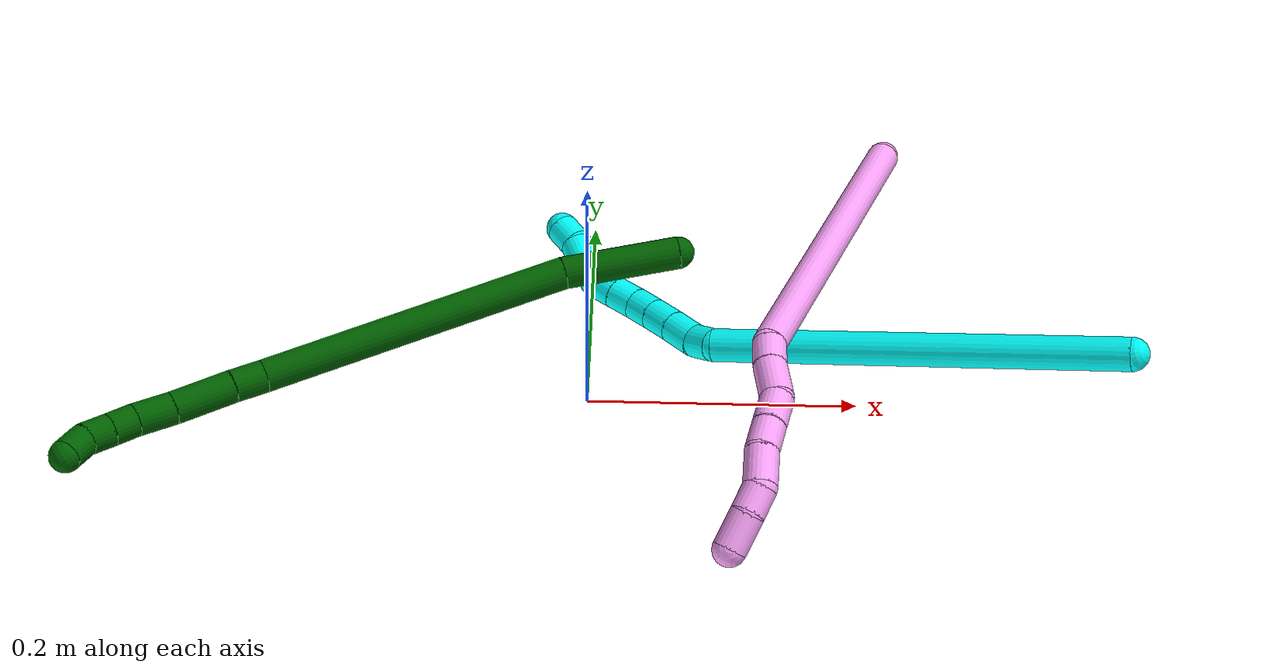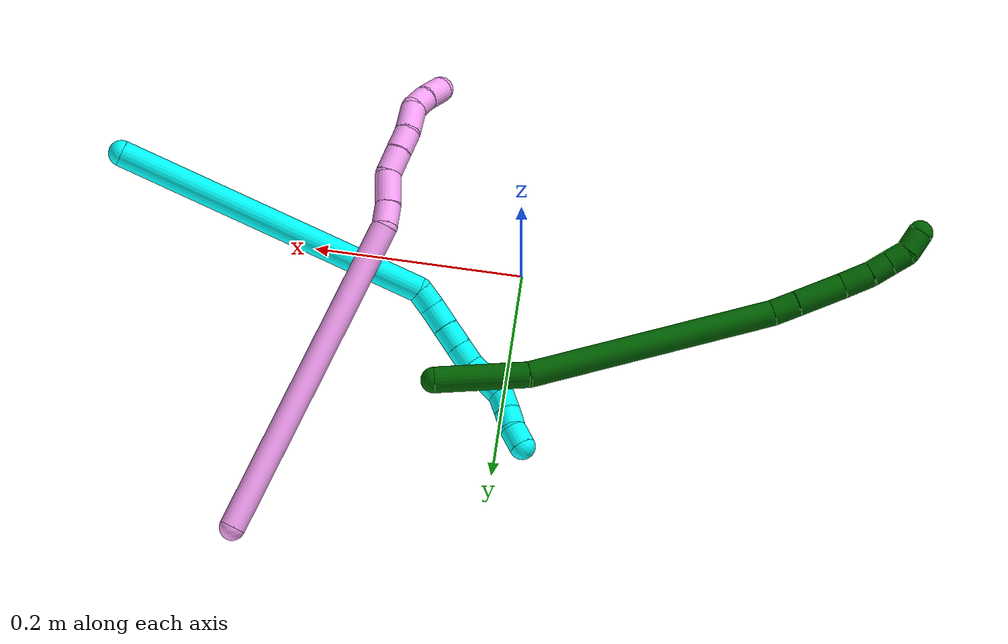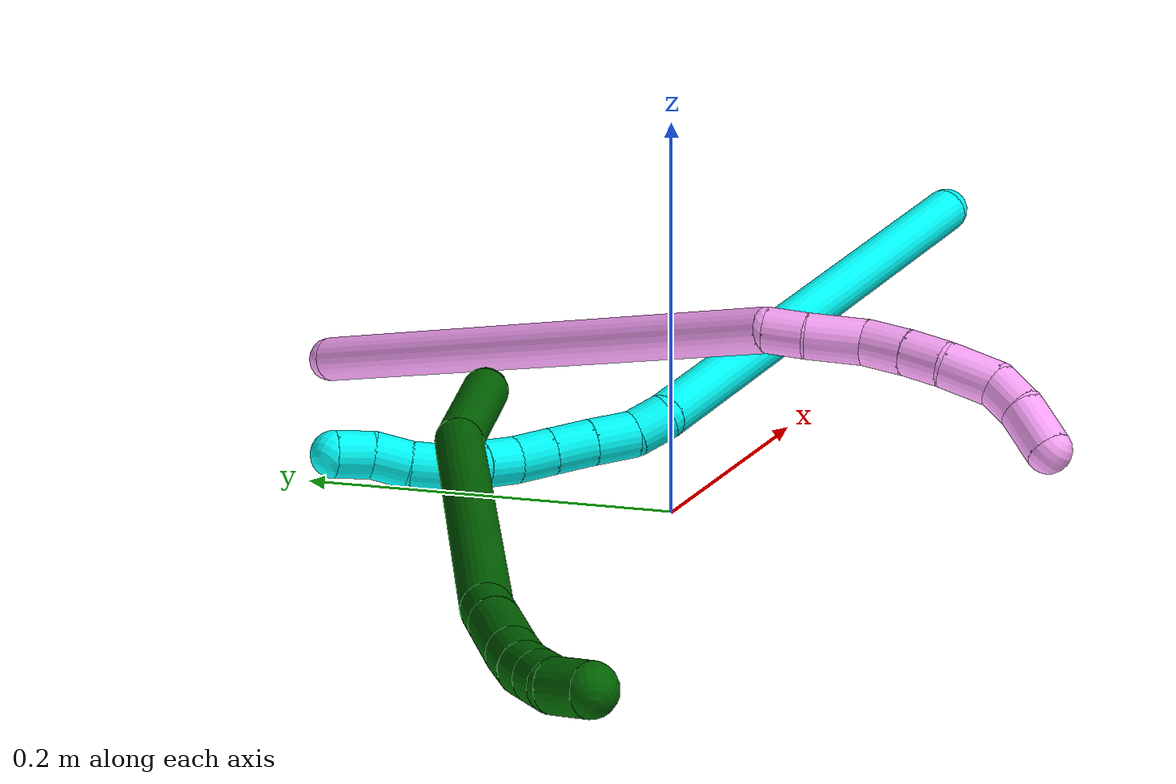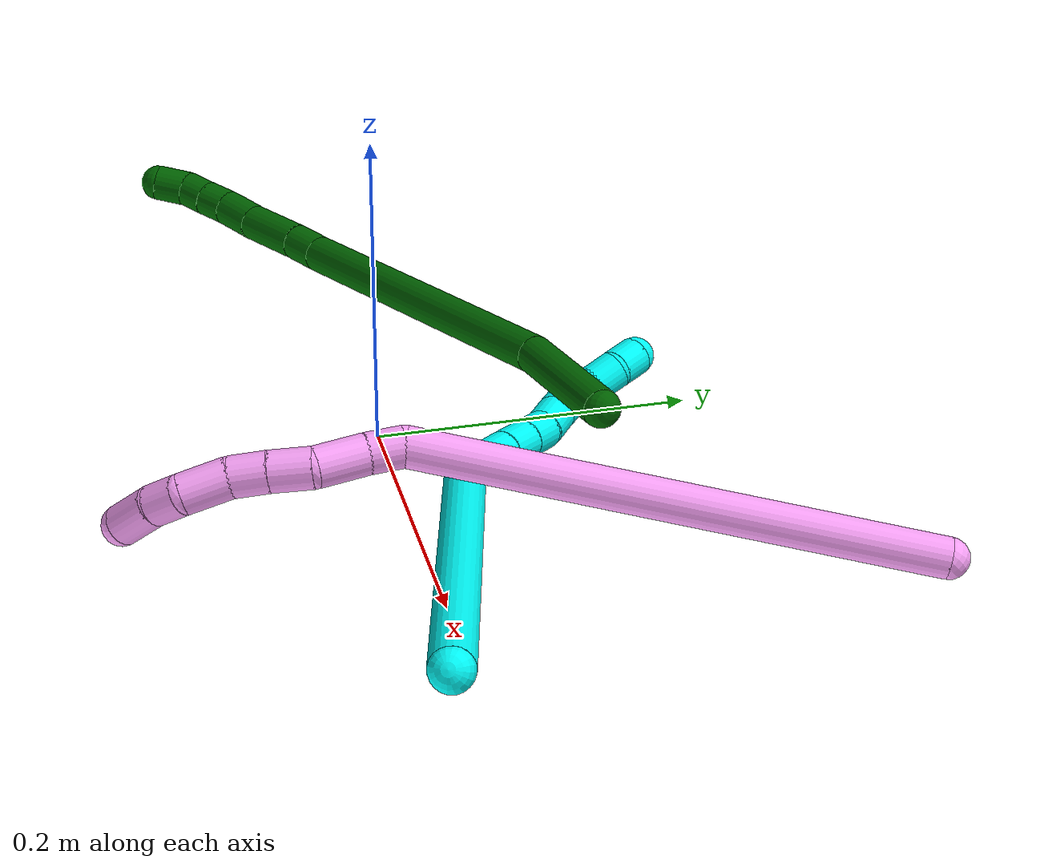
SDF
<sdf version="1.7">
 <world name="default">
  <model name="photoneo_s_sensor">
   <static>1</static>
   <pose>0 0 2 1.57079 1.57079 3.14159</pose>
   <link name="link">
    <inertial><mass>0.1</mass></inertial>
    <sensor name="sensor" type="depth">
     <update_rate>30</update_rate>
     <camera>
      <horizontal_fov>1.22</horizontal_fov>
      <image><width>1920</width><height>1200</height><format>B8G8R8</format></image>
      <clip><near>0.1</near><far>4</far></clip>
      <depth_camera><output>points</output></depth_camera>
     </camera>
     <plugin name="camera_plugin" filename="libgazebo_ros_depth_camera.so">
      <baseline>0.2</baseline>
      <alwaysOn>1</alwaysOn>
      <updateRate>0.0</updateRate>
      <cameraName>camera_ir</cameraName>
      <imageTopicName>/camera/color/image_raw</imageTopicName>
      <cameraInfoTopicName>/camera/color/camera_info</cameraInfoTopicName>
      <depthImageTopicName>/camera/depth/image_raw</depthImageTopicName>
      <depthImageCameraInfoTopicName>/camera/depth/camera_info</depthImageCameraInfoTopicName>
      <pointCloudTopicName>/camera/depth/points</pointCloudTopicName>
      <frameName>fr_optical</frameName>
      <pointCloudCutoff>0.1</pointCloudCutoff>
      <pointCloudCutoffMax>2.0</pointCloudCutoffMax>
      <distortionK1>0</distortionK1>
      <distortionK2>0</distortionK2>
      <distortionK3>0</distortionK3>
      <distortionT1>0</distortionT1>
      <distortionT2>0</distortionT2>
      <CxPrime>0</CxPrime>
      <Cx>0</Cx>
      <Cy>0</Cy>
      <focalLength>0</focalLength>
      <hackBaseline>0</hackBaseline>
     </plugin>
    </sensor>
   </link>
  </model>
  <model name="bin">
   <static>1</static>
   <link name="bottom">
    <collision name="collision-bottom">
     <pose>0 0 -0.01 0 -0 0</pose>
     <geometry><box><size>0.8 0.6 0.02</size></box></geometry>
     <surface>
      <friction><ode><mu>100</mu><mu2>100</mu2></ode></friction>
      <contact><collide_bitmask>65535</collide_bitmask></contact>
     </surface>
    </collision>
   </link>
   <link name="west_wall">
    <collision name="collision-west_wall">
     <pose>-0.41 0 0.1 0 -0 0</pose>
     <geometry><box><size>0.02 0.6 0.2</size></box></geometry>
     <surface>
      <friction><ode><mu>100</mu><mu2>100</mu2></ode></friction>
      <contact><collide_bitmask>65535</collide_bitmask></contact>
     </surface>
    </collision>
   </link>
   <link name="east_wall">
    <collision name="collision-east_wall">
     <pose>0.41 0 0.1 0 -0 0</pose>
     <geometry><box><size>0.02 0.6 0.2</size></box></geometry>
     <surface>
      <friction><ode><mu>100</mu><mu2>100</mu2></ode></friction>
      <contact><collide_bitmask>65535</collide_bitmask></contact>
     </surface>
    </collision>
   </link>
   <link name="south_wall">
    <collision name="collision-south_wall">
     <pose>0 -0.31 0.1 0 -0 0</pose>
     <geometry><box><size>0.8 0.02 0.2</size></box></geometry>
     <surface>
      <friction><ode><mu>100</mu><mu2>100</mu2></ode></friction>
      <contact><collide_bitmask>65535</collide_bitmask></contact>
     </surface>
    </collision>
   </link>
   <link name="north_wall">
    <collision name="collision-north_wall">
     <pose>0 0.31 0.1 0 -0 0</pose>
     <geometry><box><size>0.8 0.02 0.2</size></box></geometry>
     <surface>
      <friction><ode><mu>100</mu><mu2>100</mu2></ode></friction>
      <contact><collide_bitmask>65535</collide_bitmask></contact>
     </surface>
    </collision>
   </link>
  </model>
  <model name="3">
   <static>0</static>
   <link name="3">
    <collision name="collision-cylinder-e_1_1_4">
     <pose>-0.054862 -0.023895 -0.143656 2.97677 -0.360277 -2.28997</pose>
     <geometry><cylinder><radius>0.0125</radius><length>0.311242</length></cylinder></geometry>
     <surface>
      <friction><ode><mu>1.16</mu><mu2>1.16</mu2><slip1>0</slip1><slip2>0</slip2></ode></friction>
      <contact><ode><kp>1e+06</kp><kd>1</kd><max_vel>0</max_vel><min_depth>0.001</min_depth></ode></contact>
     </surface>
    </collision>
    <visual name="visual-cylinder-e_1_1_4">
     <pose>-0.054862 -0.023895 -0.143656 2.97677 -0.360277 -2.28997</pose>
     <geometry><cylinder><radius>0.0125</radius><length>0.311242</length></cylinder></geometry>
     <material><ambient>0.003922 1 0.996078 1</ambient></material>
    </visual>
    <collision name="collision-cylinder-e_2_4_5">
     <pose>-0.111621 -0.044523 -0.296667 -2.80565 -0.189295 1.02074</pose>
     <geometry><cylinder><radius>0.0125</radius><length>0.020176</length></cylinder></geometry>
     <surface>
      <friction><ode><mu>1.16</mu><mu2>1.16</mu2><slip1>0</slip1><slip2>0</slip2></ode></friction>
      <contact><ode><kp>1e+06</kp><kd>1</kd><max_vel>0</max_vel><min_depth>0.001</min_depth></ode></contact>
     </surface>
    </collision>
    <visual name="visual-cylinder-e_2_4_5">
     <pose>-0.111621 -0.044523 -0.296667 -2.80565 -0.189295 1.02074</pose>
     <geometry><cylinder><radius>0.0125</radius><length>0.020176</length></cylinder></geometry>
     <material><ambient>0.003922 1 0.996078 1</ambient></material>
    </visual>
    <collision name="collision-cylinder-e_3_5_6">
     <pose>-0.118773 -0.036145 -0.315694 -2.65542 -0.447612 1.48518</pose>
     <geometry><cylinder><radius>0.0125</radius><length>0.024273</length></cylinder></geometry>
     <surface>
      <friction><ode><mu>1.16</mu><mu2>1.16</mu2><slip1>0</slip1><slip2>0</slip2></ode></friction>
      <contact><ode><kp>1e+06</kp><kd>1</kd><max_vel>0</max_vel><min_depth>0.001</min_depth></ode></contact>
     </surface>
    </collision>
    <visual name="visual-cylinder-e_3_5_6">
     <pose>-0.118773 -0.036145 -0.315694 -2.65542 -0.447612 1.48518</pose>
     <geometry><cylinder><radius>0.0125</radius><length>0.024273</length></cylinder></geometry>
     <material><ambient>0.003922 1 0.996078 1</ambient></material>
    </visual>
    <collision name="collision-cylinder-e_4_6_7">
     <pose>-0.128662 -0.026292 -0.334617 -2.66801 -0.419621 1.44603</pose>
     <geometry><cylinder><radius>0.0125</radius><length>0.022761</length></cylinder></geometry>
     <surface>
      <friction><ode><mu>1.16</mu><mu2>1.16</mu2><slip1>0</slip1><slip2>0</slip2></ode></friction>
      <contact><ode><kp>1e+06</kp><kd>1</kd><max_vel>0</max_vel><min_depth>0.001</min_depth></ode></contact>
     </surface>
    </collision>
    <visual name="visual-cylinder-e_4_6_7">
     <pose>-0.128662 -0.026292 -0.334617 -2.66801 -0.419621 1.44603</pose>
     <geometry><cylinder><radius>0.0125</radius><length>0.022761</length></cylinder></geometry>
     <material><ambient>0.003922 1 0.996078 1</ambient></material>
    </visual>
    <collision name="collision-cylinder-e_5_7_8">
     <pose>-0.137583 -0.017312 -0.352456 -2.68306 -0.420573 1.48165</pose>
     <geometry><cylinder><radius>0.0125</radius><length>0.020989</length></cylinder></geometry>
     <surface>
      <friction><ode><mu>1.16</mu><mu2>1.16</mu2><slip1>0</slip1><slip2>0</slip2></ode></friction>
      <contact><ode><kp>1e+06</kp><kd>1</kd><max_vel>0</max_vel><min_depth>0.001</min_depth></ode></contact>
     </surface>
    </collision>
    <visual name="visual-cylinder-e_5_7_8">
     <pose>-0.137583 -0.017312 -0.352456 -2.68306 -0.420573 1.48165</pose>
     <geometry><cylinder><radius>0.0125</radius><length>0.020989</length></cylinder></geometry>
     <material><ambient>0.003922 1 0.996078 1</ambient></material>
    </visual>
    <collision name="collision-cylinder-e_6_8_9">
     <pose>-0.147637 -0.010737 -0.369075 -2.85857 -0.603975 2.28375</pose>
     <geometry><cylinder><radius>0.0125</radius><length>0.020315</length></cylinder></geometry>
     <surface>
      <friction><ode><mu>1.16</mu><mu2>1.16</mu2><slip1>0</slip1><slip2>0</slip2></ode></friction>
      <contact><ode><kp>1e+06</kp><kd>1</kd><max_vel>0</max_vel><min_depth>0.001</min_depth></ode></contact>
     </surface>
    </collision>
    <visual name="visual-cylinder-e_6_8_9">
     <pose>-0.147637 -0.010737 -0.369075 -2.85857 -0.603975 2.28375</pose>
     <geometry><cylinder><radius>0.0125</radius><length>0.020315</length></cylinder></geometry>
     <material><ambient>0.003922 1 0.996078 1</ambient></material>
    </visual>
    <collision name="collision-cylinder-e_7_9_10">
     <pose>-0.159035 -0.00587 -0.385058 -2.8334 -0.593318 2.20132</pose>
     <geometry><cylinder><radius>0.0125</radius><length>0.020139</length></cylinder></geometry>
     <surface>
      <friction><ode><mu>1.16</mu><mu2>1.16</mu2><slip1>0</slip1><slip2>0</slip2></ode></friction>
      <contact><ode><kp>1e+06</kp><kd>1</kd><max_vel>0</max_vel><min_depth>0.001</min_depth></ode></contact>
     </surface>
    </collision>
    <visual name="visual-cylinder-e_7_9_10">
     <pose>-0.159035 -0.00587 -0.385058 -2.8334 -0.593318 2.20132</pose>
     <geometry><cylinder><radius>0.0125</radius><length>0.020139</length></cylinder></geometry>
     <material><ambient>0.003922 1 0.996078 1</ambient></material>
    </visual>
    <collision name="collision-cylinder-e_8_10_11">
     <pose>-0.170164 0.002962 -0.39853 -2.29012 -0.581055 1.16581</pose>
     <geometry><cylinder><radius>0.0125</radius><length>0.020036</length></cylinder></geometry>
     <surface>
      <friction><ode><mu>1.16</mu><mu2>1.16</mu2><slip1>0</slip1><slip2>0</slip2></ode></friction>
      <contact><ode><kp>1e+06</kp><kd>1</kd><max_vel>0</max_vel><min_depth>0.001</min_depth></ode></contact>
     </surface>
    </collision>
    <visual name="visual-cylinder-e_8_10_11">
     <pose>-0.170164 0.002962 -0.39853 -2.29012 -0.581055 1.16581</pose>
     <geometry><cylinder><radius>0.0125</radius><length>0.020036</length></cylinder></geometry>
     <material><ambient>0.003922 1 0.996078 1</ambient></material>
    </visual>
    <collision name="collision-cylinder-e_9_11_12">
     <pose>-0.182104 0.015717 -0.408205 -2.14294 -0.697899 1.17657</pose>
     <geometry><cylinder><radius>0.0125</radius><length>0.020045</length></cylinder></geometry>
     <surface>
      <friction><ode><mu>1.16</mu><mu2>1.16</mu2><slip1>0</slip1><slip2>0</slip2></ode></friction>
      <contact><ode><kp>1e+06</kp><kd>1</kd><max_vel>0</max_vel><min_depth>0.001</min_depth></ode></contact>
     </surface>
    </collision>
    <visual name="visual-cylinder-e_9_11_12">
     <pose>-0.182104 0.015717 -0.408205 -2.14294 -0.697899 1.17657</pose>
     <geometry><cylinder><radius>0.0125</radius><length>0.020045</length></cylinder></geometry>
     <material><ambient>0.003922 1 0.996078 1</ambient></material>
    </visual>
    <collision name="collision-cylinder-e_10_12_2">
     <pose>-0.194104 0.027328 -0.418901 -2.47393 -0.58883 1.4369</pose>
     <geometry><cylinder><radius>0.0125</radius><length>0.020024</length></cylinder></geometry>
     <surface>
      <friction><ode><mu>1.16</mu><mu2>1.16</mu2><slip1>0</slip1><slip2>0</slip2></ode></friction>
      <contact><ode><kp>1e+06</kp><kd>1</kd><max_vel>0</max_vel><min_depth>0.001</min_depth></ode></contact>
     </surface>
    </collision>
    <visual name="visual-cylinder-e_10_12_2">
     <pose>-0.194104 0.027328 -0.418901 -2.47393 -0.58883 1.4369</pose>
     <geometry><cylinder><radius>0.0125</radius><length>0.020024</length></cylinder></geometry>
     <material><ambient>0.003922 1 0.996078 1</ambient></material>
    </visual>
    <collision name="collision-sphere-2">
     <pose>-0.199665 0.032483 -0.425439 0 -0 0</pose>
     <geometry><sphere><radius>0.0125</radius></sphere></geometry>
     <surface>
      <friction><ode><mu>1.16</mu><mu2>1.16</mu2><slip1>0</slip1><slip2>0</slip2></ode></friction>
      <contact><ode><kp>1e+06</kp><kd>1</kd><max_vel>0</max_vel><min_depth>0.001</min_depth></ode></contact>
     </surface>
    </collision>
    <visual name="visual-sphere-2">
     <pose>-0.199665 0.032483 -0.425439 0 -0 0</pose>
     <geometry><sphere><radius>0.0125</radius></sphere></geometry>
     <material><ambient>0.003922 1 0.996078 1</ambient></material>
    </visual>
    <collision name="collision-sphere-12">
     <pose>-0.188544 0.022173 -0.412363 0 -0 0</pose>
     <geometry><sphere><radius>0.0125</radius></sphere></geometry>
     <surface>
      <friction><ode><mu>1.16</mu><mu2>1.16</mu2><slip1>0</slip1><slip2>0</slip2></ode></friction>
      <contact><ode><kp>1e+06</kp><kd>1</kd><max_vel>0</max_vel><min_depth>0.001</min_depth></ode></contact>
     </surface>
    </collision>
    <visual name="visual-sphere-12">
     <pose>-0.188544 0.022173 -0.412363 0 -0 0</pose>
     <geometry><sphere><radius>0.0125</radius></sphere></geometry>
     <material><ambient>0.003922 1 0.996078 1</ambient></material>
    </visual>
    <collision name="collision-sphere-11">
     <pose>-0.175663 0.009261 -0.404047 0 -0 0</pose>
     <geometry><sphere><radius>0.0125</radius></sphere></geometry>
     <surface>
      <friction><ode><mu>1.16</mu><mu2>1.16</mu2><slip1>0</slip1><slip2>0</slip2></ode></friction>
      <contact><ode><kp>1e+06</kp><kd>1</kd><max_vel>0</max_vel><min_depth>0.001</min_depth></ode></contact>
     </surface>
    </collision>
    <visual name="visual-sphere-11">
     <pose>-0.175663 0.009261 -0.404047 0 -0 0</pose>
     <geometry><sphere><radius>0.0125</radius></sphere></geometry>
     <material><ambient>0.003922 1 0.996078 1</ambient></material>
    </visual>
    <collision name="collision-sphere-10">
     <pose>-0.164665 -0.003337 -0.393013 0 -0 0</pose>
     <geometry><sphere><radius>0.0125</radius></sphere></geometry>
     <surface>
      <friction><ode><mu>1.16</mu><mu2>1.16</mu2><slip1>0</slip1><slip2>0</slip2></ode></friction>
      <contact><ode><kp>1e+06</kp><kd>1</kd><max_vel>0</max_vel><min_depth>0.001</min_depth></ode></contact>
     </surface>
    </collision>
    <visual name="visual-sphere-10">
     <pose>-0.164665 -0.003337 -0.393013 0 -0 0</pose>
     <geometry><sphere><radius>0.0125</radius></sphere></geometry>
     <material><ambient>0.003922 1 0.996078 1</ambient></material>
    </visual>
    <collision name="collision-sphere-9">
     <pose>-0.153405 -0.008402 -0.377103 0 -0 0</pose>
     <geometry><sphere><radius>0.0125</radius></sphere></geometry>
     <surface>
      <friction><ode><mu>1.16</mu><mu2>1.16</mu2><slip1>0</slip1><slip2>0</slip2></ode></friction>
      <contact><ode><kp>1e+06</kp><kd>1</kd><max_vel>0</max_vel><min_depth>0.001</min_depth></ode></contact>
     </surface>
    </collision>
    <visual name="visual-sphere-9">
     <pose>-0.153405 -0.008402 -0.377103 0 -0 0</pose>
     <geometry><sphere><radius>0.0125</radius></sphere></geometry>
     <material><ambient>0.003922 1 0.996078 1</ambient></material>
    </visual>
    <collision name="collision-sphere-4">
     <pose>-0.109723 -0.047789 -0.287313 0 -0 0</pose>
     <geometry><sphere><radius>0.0125</radius></sphere></geometry>
     <surface>
      <friction><ode><mu>1.16</mu><mu2>1.16</mu2><slip1>0</slip1><slip2>0</slip2></ode></friction>
      <contact><ode><kp>1e+06</kp><kd>1</kd><max_vel>0</max_vel><min_depth>0.001</min_depth></ode></contact>
     </surface>
    </collision>
    <visual name="visual-sphere-4">
     <pose>-0.109723 -0.047789 -0.287313 0 -0 0</pose>
     <geometry><sphere><radius>0.0125</radius></sphere></geometry>
     <material><ambient>0.003922 1 0.996078 1</ambient></material>
    </visual>
    <collision name="collision-sphere-1">
     <geometry><sphere><radius>0.0125</radius></sphere></geometry>
     <surface>
      <friction><ode><mu>1.16</mu><mu2>1.16</mu2><slip1>0</slip1><slip2>0</slip2></ode></friction>
      <contact><ode><kp>1e+06</kp><kd>1</kd><max_vel>0</max_vel><min_depth>0.001</min_depth></ode></contact>
     </surface>
    </collision>
    <visual name="visual-sphere-1">
     <geometry><sphere><radius>0.0125</radius></sphere></geometry>
     <material><ambient>0.003922 1 0.996078 1</ambient></material>
    </visual>
    <collision name="collision-sphere-8">
     <pose>-0.141868 -0.013071 -0.361047 0 -0 0</pose>
     <geometry><sphere><radius>0.0125</radius></sphere></geometry>
     <surface>
      <friction><ode><mu>1.16</mu><mu2>1.16</mu2><slip1>0</slip1><slip2>0</slip2></ode></friction>
      <contact><ode><kp>1e+06</kp><kd>1</kd><max_vel>0</max_vel><min_depth>0.001</min_depth></ode></contact>
     </surface>
    </collision>
    <visual name="visual-sphere-8">
     <pose>-0.141868 -0.013071 -0.361047 0 -0 0</pose>
     <geometry><sphere><radius>0.0125</radius></sphere></geometry>
     <material><ambient>0.003922 1 0.996078 1</ambient></material>
    </visual>
    <collision name="collision-sphere-5">
     <pose>-0.11352 -0.041257 -0.306021 0 -0 0</pose>
     <geometry><sphere><radius>0.0125</radius></sphere></geometry>
     <surface>
      <friction><ode><mu>1.16</mu><mu2>1.16</mu2><slip1>0</slip1><slip2>0</slip2></ode></friction>
      <contact><ode><kp>1e+06</kp><kd>1</kd><max_vel>0</max_vel><min_depth>0.001</min_depth></ode></contact>
     </surface>
    </collision>
    <visual name="visual-sphere-5">
     <pose>-0.11352 -0.041257 -0.306021 0 -0 0</pose>
     <geometry><sphere><radius>0.0125</radius></sphere></geometry>
     <material><ambient>0.003922 1 0.996078 1</ambient></material>
    </visual>
    <collision name="collision-sphere-6">
     <pose>-0.124025 -0.031033 -0.325367 0 -0 0</pose>
     <geometry><sphere><radius>0.0125</radius></sphere></geometry>
     <surface>
      <friction><ode><mu>1.16</mu><mu2>1.16</mu2><slip1>0</slip1><slip2>0</slip2></ode></friction>
      <contact><ode><kp>1e+06</kp><kd>1</kd><max_vel>0</max_vel><min_depth>0.001</min_depth></ode></contact>
     </surface>
    </collision>
    <visual name="visual-sphere-6">
     <pose>-0.124025 -0.031033 -0.325367 0 -0 0</pose>
     <geometry><sphere><radius>0.0125</radius></sphere></geometry>
     <material><ambient>0.003922 1 0.996078 1</ambient></material>
    </visual>
    <collision name="collision-sphere-7">
     <pose>-0.133299 -0.021552 -0.343866 0 -0 0</pose>
     <geometry><sphere><radius>0.0125</radius></sphere></geometry>
     <surface>
      <friction><ode><mu>1.16</mu><mu2>1.16</mu2><slip1>0</slip1><slip2>0</slip2></ode></friction>
      <contact><ode><kp>1e+06</kp><kd>1</kd><max_vel>0</max_vel><min_depth>0.001</min_depth></ode></contact>
     </surface>
    </collision>
    <visual name="visual-sphere-7">
     <pose>-0.133299 -0.021552 -0.343866 0 -0 0</pose>
     <geometry><sphere><radius>0.0125</radius></sphere></geometry>
     <material><ambient>0.003922 1 0.996078 1</ambient></material>
    </visual>
    <inertial>
     <pose>-0.09035 -0.019178 -0.226364 0 -0 0</pose>
     <mass>0.5</mass>
     <inertia>
      <ixx>-0.003337</ixx>
      <ixy>0</ixy>
      <ixz>0</ixz>
      <iyy>-1e-05</iyy>
      <iyz>0</iyz>
      <izz>0.001245</izz>
     </inertia>
    </inertial>
   </link>
   <pose>0.388486 -0.038135 0.09231 -0.067901 0.98407 -0.466977</pose>
  </model>
  <model name="4">
   <static>0</static>
   <link name="4">
    <collision name="collision-cylinder-e_1_1_4">
     <pose>0.005085 -0.11251 0.113219 0.782255 0.031848 0.013134</pose>
     <geometry><cylinder><radius>0.0125</radius><length>0.319393</length></cylinder></geometry>
     <surface>
      <friction><ode><mu>1.16</mu><mu2>1.16</mu2><slip1>0</slip1><slip2>0</slip2></ode></friction>
      <contact><ode><kp>1e+06</kp><kd>1</kd><max_vel>0</max_vel><min_depth>0.001</min_depth></ode></contact>
     </surface>
    </collision>
    <visual name="visual-cylinder-e_1_1_4">
     <pose>0.005085 -0.11251 0.113219 0.782255 0.031848 0.013134</pose>
     <geometry><cylinder><radius>0.0125</radius><length>0.319393</length></cylinder></geometry>
     <material><ambient>1 0.65098 0.996078 1</ambient></material>
    </visual>
    <collision name="collision-cylinder-e_2_4_5">
     <pose>0.01491 -0.232903 0.232732 0.89709 0.439281 0.214055</pose>
     <geometry><cylinder><radius>0.0125</radius><length>0.022289</length></cylinder></geometry>
     <surface>
      <friction><ode><mu>1.16</mu><mu2>1.16</mu2><slip1>0</slip1><slip2>0</slip2></ode></friction>
      <contact><ode><kp>1e+06</kp><kd>1</kd><max_vel>0</max_vel><min_depth>0.001</min_depth></ode></contact>
     </surface>
    </collision>
    <visual name="visual-cylinder-e_2_4_5">
     <pose>0.01491 -0.232903 0.232732 0.89709 0.439281 0.214055</pose>
     <geometry><cylinder><radius>0.0125</radius><length>0.022289</length></cylinder></geometry>
     <material><ambient>1 0.65098 0.996078 1</ambient></material>
    </visual>
    <collision name="collision-cylinder-e_3_5_6">
     <pose>0.028179 -0.250712 0.248142 0.827849 0.564216 0.253291</pose>
     <geometry><cylinder><radius>0.0125</radius><length>0.031902</length></cylinder></geometry>
     <surface>
      <friction><ode><mu>1.16</mu><mu2>1.16</mu2><slip1>0</slip1><slip2>0</slip2></ode></friction>
      <contact><ode><kp>1e+06</kp><kd>1</kd><max_vel>0</max_vel><min_depth>0.001</min_depth></ode></contact>
     </surface>
    </collision>
    <visual name="visual-cylinder-e_3_5_6">
     <pose>0.028179 -0.250712 0.248142 0.827849 0.564216 0.253291</pose>
     <geometry><cylinder><radius>0.0125</radius><length>0.031902</length></cylinder></geometry>
     <material><ambient>1 0.65098 0.996078 1</ambient></material>
    </visual>
    <collision name="collision-cylinder-e_4_6_7">
     <pose>0.039568 -0.271361 0.263907 1.01582 0.222821 0.124382</pose>
     <geometry><cylinder><radius>0.0125</radius><length>0.025871</length></cylinder></geometry>
     <surface>
      <friction><ode><mu>1.16</mu><mu2>1.16</mu2><slip1>0</slip1><slip2>0</slip2></ode></friction>
      <contact><ode><kp>1e+06</kp><kd>1</kd><max_vel>0</max_vel><min_depth>0.001</min_depth></ode></contact>
     </surface>
    </collision>
    <visual name="visual-cylinder-e_4_6_7">
     <pose>0.039568 -0.271361 0.263907 1.01582 0.222821 0.124382</pose>
     <geometry><cylinder><radius>0.0125</radius><length>0.025871</length></cylinder></geometry>
     <material><ambient>1 0.65098 0.996078 1</ambient></material>
    </visual>
    <collision name="collision-cylinder-e_5_7_8">
     <pose>0.045195 -0.291792 0.275842 1.07213 0.245431 0.146283</pose>
     <geometry><cylinder><radius>0.0125</radius><length>0.022793</length></cylinder></geometry>
     <surface>
      <friction><ode><mu>1.16</mu><mu2>1.16</mu2><slip1>0</slip1><slip2>0</slip2></ode></friction>
      <contact><ode><kp>1e+06</kp><kd>1</kd><max_vel>0</max_vel><min_depth>0.001</min_depth></ode></contact>
     </surface>
    </collision>
    <visual name="visual-cylinder-e_5_7_8">
     <pose>0.045195 -0.291792 0.275842 1.07213 0.245431 0.146283</pose>
     <geometry><cylinder><radius>0.0125</radius><length>0.022793</length></cylinder></geometry>
     <material><ambient>1 0.65098 0.996078 1</ambient></material>
    </visual>
    <collision name="collision-cylinder-e_6_8_9">
     <pose>0.054413 -0.313474 0.28662 1.14084 0.455271 0.295077</pose>
     <geometry><cylinder><radius>0.0125</radius><length>0.029332</length></cylinder></geometry>
     <surface>
      <friction><ode><mu>1.16</mu><mu2>1.16</mu2><slip1>0</slip1><slip2>0</slip2></ode></friction>
      <contact><ode><kp>1e+06</kp><kd>1</kd><max_vel>0</max_vel><min_depth>0.001</min_depth></ode></contact>
     </surface>
    </collision>
    <visual name="visual-cylinder-e_6_8_9">
     <pose>0.054413 -0.313474 0.28662 1.14084 0.455271 0.295077</pose>
     <geometry><cylinder><radius>0.0125</radius><length>0.029332</length></cylinder></geometry>
     <material><ambient>1 0.65098 0.996078 1</ambient></material>
    </visual>
    <collision name="collision-cylinder-e_7_9_10">
     <pose>0.062234 -0.335647 0.292832 1.50016 0.133351 0.124274</pose>
     <geometry><cylinder><radius>0.0125</radius><length>0.020635</length></cylinder></geometry>
     <surface>
      <friction><ode><mu>1.16</mu><mu2>1.16</mu2><slip1>0</slip1><slip2>0</slip2></ode></friction>
      <contact><ode><kp>1e+06</kp><kd>1</kd><max_vel>0</max_vel><min_depth>0.001</min_depth></ode></contact>
     </surface>
    </collision>
    <visual name="visual-cylinder-e_7_9_10">
     <pose>0.062234 -0.335647 0.292832 1.50016 0.133351 0.124274</pose>
     <geometry><cylinder><radius>0.0125</radius><length>0.020635</length></cylinder></geometry>
     <material><ambient>1 0.65098 0.996078 1</ambient></material>
    </visual>
    <collision name="collision-cylinder-e_8_10_2">
     <pose>0.065249 -0.359553 0.29198 1.68508 0.118588 0.132938</pose>
     <geometry><cylinder><radius>0.0125</radius><length>0.027785</length></cylinder></geometry>
     <surface>
      <friction><ode><mu>1.16</mu><mu2>1.16</mu2><slip1>0</slip1><slip2>0</slip2></ode></friction>
      <contact><ode><kp>1e+06</kp><kd>1</kd><max_vel>0</max_vel><min_depth>0.001</min_depth></ode></contact>
     </surface>
    </collision>
    <visual name="visual-cylinder-e_8_10_2">
     <pose>0.065249 -0.359553 0.29198 1.68508 0.118588 0.132938</pose>
     <geometry><cylinder><radius>0.0125</radius><length>0.027785</length></cylinder></geometry>
     <material><ambient>1 0.65098 0.996078 1</ambient></material>
    </visual>
    <collision name="collision-sphere-2">
     <pose>0.066893 -0.373258 0.290407 0 -0 0</pose>
     <geometry><sphere><radius>0.0125</radius></sphere></geometry>
     <surface>
      <friction><ode><mu>1.16</mu><mu2>1.16</mu2><slip1>0</slip1><slip2>0</slip2></ode></friction>
      <contact><ode><kp>1e+06</kp><kd>1</kd><max_vel>0</max_vel><min_depth>0.001</min_depth></ode></contact>
     </surface>
    </collision>
    <visual name="visual-sphere-2">
     <pose>0.066893 -0.373258 0.290407 0 -0 0</pose>
     <geometry><sphere><radius>0.0125</radius></sphere></geometry>
     <material><ambient>1 0.65098 0.996078 1</ambient></material>
    </visual>
    <collision name="collision-sphere-10">
     <pose>0.063605 -0.345848 0.293554 0 -0 0</pose>
     <geometry><sphere><radius>0.0125</radius></sphere></geometry>
     <surface>
      <friction><ode><mu>1.16</mu><mu2>1.16</mu2><slip1>0</slip1><slip2>0</slip2></ode></friction>
      <contact><ode><kp>1e+06</kp><kd>1</kd><max_vel>0</max_vel><min_depth>0.001</min_depth></ode></contact>
     </surface>
    </collision>
    <visual name="visual-sphere-10">
     <pose>0.063605 -0.345848 0.293554 0 -0 0</pose>
     <geometry><sphere><radius>0.0125</radius></sphere></geometry>
     <material><ambient>1 0.65098 0.996078 1</ambient></material>
    </visual>
    <collision name="collision-sphere-9">
     <pose>0.060862 -0.325447 0.29211 0 -0 0</pose>
     <geometry><sphere><radius>0.0125</radius></sphere></geometry>
     <surface>
      <friction><ode><mu>1.16</mu><mu2>1.16</mu2><slip1>0</slip1><slip2>0</slip2></ode></friction>
      <contact><ode><kp>1e+06</kp><kd>1</kd><max_vel>0</max_vel><min_depth>0.001</min_depth></ode></contact>
     </surface>
    </collision>
    <visual name="visual-sphere-9">
     <pose>0.060862 -0.325447 0.29211 0 -0 0</pose>
     <geometry><sphere><radius>0.0125</radius></sphere></geometry>
     <material><ambient>1 0.65098 0.996078 1</ambient></material>
    </visual>
    <collision name="collision-sphere-4">
     <pose>0.01017 -0.22502 0.226439 0 -0 0</pose>
     <geometry><sphere><radius>0.0125</radius></sphere></geometry>
     <surface>
      <friction><ode><mu>1.16</mu><mu2>1.16</mu2><slip1>0</slip1><slip2>0</slip2></ode></friction>
      <contact><ode><kp>1e+06</kp><kd>1</kd><max_vel>0</max_vel><min_depth>0.001</min_depth></ode></contact>
     </surface>
    </collision>
    <visual name="visual-sphere-4">
     <pose>0.01017 -0.22502 0.226439 0 -0 0</pose>
     <geometry><sphere><radius>0.0125</radius></sphere></geometry>
     <material><ambient>1 0.65098 0.996078 1</ambient></material>
    </visual>
    <collision name="collision-sphere-1">
     <geometry><sphere><radius>0.0125</radius></sphere></geometry>
     <surface>
      <friction><ode><mu>1.16</mu><mu2>1.16</mu2><slip1>0</slip1><slip2>0</slip2></ode></friction>
      <contact><ode><kp>1e+06</kp><kd>1</kd><max_vel>0</max_vel><min_depth>0.001</min_depth></ode></contact>
     </surface>
    </collision>
    <visual name="visual-sphere-1">
     <geometry><sphere><radius>0.0125</radius></sphere></geometry>
     <material><ambient>1 0.65098 0.996078 1</ambient></material>
    </visual>
    <collision name="collision-sphere-8">
     <pose>0.047964 -0.301501 0.281129 0 -0 0</pose>
     <geometry><sphere><radius>0.0125</radius></sphere></geometry>
     <surface>
      <friction><ode><mu>1.16</mu><mu2>1.16</mu2><slip1>0</slip1><slip2>0</slip2></ode></friction>
      <contact><ode><kp>1e+06</kp><kd>1</kd><max_vel>0</max_vel><min_depth>0.001</min_depth></ode></contact>
     </surface>
    </collision>
    <visual name="visual-sphere-8">
     <pose>0.047964 -0.301501 0.281129 0 -0 0</pose>
     <geometry><sphere><radius>0.0125</radius></sphere></geometry>
     <material><ambient>1 0.65098 0.996078 1</ambient></material>
    </visual>
    <collision name="collision-sphere-5">
     <pose>0.01965 -0.240785 0.239025 0 -0 0</pose>
     <geometry><sphere><radius>0.0125</radius></sphere></geometry>
     <surface>
      <friction><ode><mu>1.16</mu><mu2>1.16</mu2><slip1>0</slip1><slip2>0</slip2></ode></friction>
      <contact><ode><kp>1e+06</kp><kd>1</kd><max_vel>0</max_vel><min_depth>0.001</min_depth></ode></contact>
     </surface>
    </collision>
    <visual name="visual-sphere-5">
     <pose>0.01965 -0.240785 0.239025 0 -0 0</pose>
     <geometry><sphere><radius>0.0125</radius></sphere></geometry>
     <material><ambient>1 0.65098 0.996078 1</ambient></material>
    </visual>
    <collision name="collision-sphere-6">
     <pose>0.036709 -0.260639 0.25726 0 -0 0</pose>
     <geometry><sphere><radius>0.0125</radius></sphere></geometry>
     <surface>
      <friction><ode><mu>1.16</mu><mu2>1.16</mu2><slip1>0</slip1><slip2>0</slip2></ode></friction>
      <contact><ode><kp>1e+06</kp><kd>1</kd><max_vel>0</max_vel><min_depth>0.001</min_depth></ode></contact>
     </surface>
    </collision>
    <visual name="visual-sphere-6">
     <pose>0.036709 -0.260639 0.25726 0 -0 0</pose>
     <geometry><sphere><radius>0.0125</radius></sphere></geometry>
     <material><ambient>1 0.65098 0.996078 1</ambient></material>
    </visual>
    <collision name="collision-sphere-7">
     <pose>0.042426 -0.282083 0.270555 0 -0 0</pose>
     <geometry><sphere><radius>0.0125</radius></sphere></geometry>
     <surface>
      <friction><ode><mu>1.16</mu><mu2>1.16</mu2><slip1>0</slip1><slip2>0</slip2></ode></friction>
      <contact><ode><kp>1e+06</kp><kd>1</kd><max_vel>0</max_vel><min_depth>0.001</min_depth></ode></contact>
     </surface>
    </collision>
    <visual name="visual-sphere-7">
     <pose>0.042426 -0.282083 0.270555 0 -0 0</pose>
     <geometry><sphere><radius>0.0125</radius></sphere></geometry>
     <material><ambient>1 0.65098 0.996078 1</ambient></material>
    </visual>
    <inertial>
     <pose>0.019205 -0.177813 0.169885 0 -0 0</pose>
     <mass>0.5</mass>
     <inertia>
      <ixx>0.002786</ixx>
      <ixy>0</ixy>
      <ixz>0</ixz>
      <iyy>0.001953</iyy>
      <iyz>0</iyz>
      <izz>0.001866</izz>
     </inertia>
    </inertial>
   </link>
   <pose>0.233773 0.288485 0.011493 0.580449 0.377565 -0.436316</pose>
  </model>
  <model name="6">
   <static>0</static>
   <link name="6">
    <collision name="collision-cylinder-e_1_1_4">
     <pose>0.007524 -0.015398 0.04194 0.35186 0.166839 0.029725</pose>
     <geometry><cylinder><radius>0.0125</radius><length>0.090612</length></cylinder></geometry>
     <surface>
      <friction><ode><mu>1.16</mu><mu2>1.16</mu2><slip1>0</slip1><slip2>0</slip2></ode></friction>
      <contact><ode><kp>1e+06</kp><kd>1</kd><max_vel>0</max_vel><min_depth>0.001</min_depth></ode></contact>
     </surface>
    </collision>
    <visual name="visual-cylinder-e_1_1_4">
     <pose>0.007524 -0.015398 0.04194 0.35186 0.166839 0.029725</pose>
     <geometry><cylinder><radius>0.0125</radius><length>0.090612</length></cylinder></geometry>
     <material><ambient>0 0.392157 0.003922 1</ambient></material>
    </visual>
    <collision name="collision-cylinder-e_2_4_5">
     <pose>0.011181 -0.065637 0.200281 0.290833 -0.031812 -0.004659</pose>
     <geometry><cylinder><radius>0.0125</radius><length>0.243132</length></cylinder></geometry>
     <surface>
      <friction><ode><mu>1.16</mu><mu2>1.16</mu2><slip1>0</slip1><slip2>0</slip2></ode></friction>
      <contact><ode><kp>1e+06</kp><kd>1</kd><max_vel>0</max_vel><min_depth>0.001</min_depth></ode></contact>
     </surface>
    </collision>
    <visual name="visual-cylinder-e_2_4_5">
     <pose>0.011181 -0.065637 0.200281 0.290833 -0.031812 -0.004659</pose>
     <geometry><cylinder><radius>0.0125</radius><length>0.243132</length></cylinder></geometry>
     <material><ambient>0 0.392157 0.003922 1</ambient></material>
    </visual>
    <collision name="collision-cylinder-e_3_5_6">
     <pose>0.005549 -0.105131 0.328388 0.378359 -0.139296 -0.026712</pose>
     <geometry><cylinder><radius>0.0125</radius><length>0.025437</length></cylinder></geometry>
     <surface>
      <friction><ode><mu>1.16</mu><mu2>1.16</mu2><slip1>0</slip1><slip2>0</slip2></ode></friction>
      <contact><ode><kp>1e+06</kp><kd>1</kd><max_vel>0</max_vel><min_depth>0.001</min_depth></ode></contact>
     </surface>
    </collision>
    <visual name="visual-cylinder-e_3_5_6">
     <pose>0.005549 -0.105131 0.328388 0.378359 -0.139296 -0.026712</pose>
     <geometry><cylinder><radius>0.0125</radius><length>0.025437</length></cylinder></geometry>
     <material><ambient>0 0.392157 0.003922 1</ambient></material>
    </visual>
    <collision name="collision-cylinder-e_4_6_7">
     <pose>0.000248 -0.117618 0.362186 0.340754 -0.14967 -0.025797</pose>
     <geometry><cylinder><radius>0.0125</radius><length>0.047411</length></cylinder></geometry>
     <surface>
      <friction><ode><mu>1.16</mu><mu2>1.16</mu2><slip1>0</slip1><slip2>0</slip2></ode></friction>
      <contact><ode><kp>1e+06</kp><kd>1</kd><max_vel>0</max_vel><min_depth>0.001</min_depth></ode></contact>
     </surface>
    </collision>
    <visual name="visual-cylinder-e_4_6_7">
     <pose>0.000248 -0.117618 0.362186 0.340754 -0.14967 -0.025797</pose>
     <geometry><cylinder><radius>0.0125</radius><length>0.047411</length></cylinder></geometry>
     <material><ambient>0 0.392157 0.003922 1</ambient></material>
    </visual>
    <collision name="collision-cylinder-e_5_7_8">
     <pose>-0.005725 -0.131345 0.397785 0.411447 -0.163974 -0.034291</pose>
     <geometry><cylinder><radius>0.0125</radius><length>0.029873</length></cylinder></geometry>
     <surface>
      <friction><ode><mu>1.16</mu><mu2>1.16</mu2><slip1>0</slip1><slip2>0</slip2></ode></friction>
      <contact><ode><kp>1e+06</kp><kd>1</kd><max_vel>0</max_vel><min_depth>0.001</min_depth></ode></contact>
     </surface>
    </collision>
    <visual name="visual-cylinder-e_5_7_8">
     <pose>-0.005725 -0.131345 0.397785 0.411447 -0.163974 -0.034291</pose>
     <geometry><cylinder><radius>0.0125</radius><length>0.029873</length></cylinder></geometry>
     <material><ambient>0 0.392157 0.003922 1</ambient></material>
    </visual>
    <collision name="collision-cylinder-e_6_8_9">
     <pose>-0.011303 -0.141159 0.420248 0.412629 -0.310739 -0.06554</pose>
     <geometry><cylinder><radius>0.0125</radius><length>0.020539</length></cylinder></geometry>
     <surface>
      <friction><ode><mu>1.16</mu><mu2>1.16</mu2><slip1>0</slip1><slip2>0</slip2></ode></friction>
      <contact><ode><kp>1e+06</kp><kd>1</kd><max_vel>0</max_vel><min_depth>0.001</min_depth></ode></contact>
     </surface>
    </collision>
    <visual name="visual-cylinder-e_6_8_9">
     <pose>-0.011303 -0.141159 0.420248 0.412629 -0.310739 -0.06554</pose>
     <geometry><cylinder><radius>0.0125</radius><length>0.020539</length></cylinder></geometry>
     <material><ambient>0 0.392157 0.003922 1</ambient></material>
    </visual>
    <collision name="collision-cylinder-e_7_9_10">
     <pose>-0.017426 -0.14915 0.438099 0.429094 -0.296003 -0.064951</pose>
     <geometry><cylinder><radius>0.0125</radius><length>0.020451</length></cylinder></geometry>
     <surface>
      <friction><ode><mu>1.16</mu><mu2>1.16</mu2><slip1>0</slip1><slip2>0</slip2></ode></friction>
      <contact><ode><kp>1e+06</kp><kd>1</kd><max_vel>0</max_vel><min_depth>0.001</min_depth></ode></contact>
     </surface>
    </collision>
    <visual name="visual-cylinder-e_7_9_10">
     <pose>-0.017426 -0.14915 0.438099 0.429094 -0.296003 -0.064951</pose>
     <geometry><cylinder><radius>0.0125</radius><length>0.020451</length></cylinder></geometry>
     <material><ambient>0 0.392157 0.003922 1</ambient></material>
    </visual>
    <collision name="collision-cylinder-e_8_10_2">
     <pose>-0.028079 -0.15627 0.45467 0.378293 -0.748315 -0.150053</pose>
     <geometry><cylinder><radius>0.0125</radius><length>0.022545</length></cylinder></geometry>
     <surface>
      <friction><ode><mu>1.16</mu><mu2>1.16</mu2><slip1>0</slip1><slip2>0</slip2></ode></friction>
      <contact><ode><kp>1e+06</kp><kd>1</kd><max_vel>0</max_vel><min_depth>0.001</min_depth></ode></contact>
     </surface>
    </collision>
    <visual name="visual-cylinder-e_8_10_2">
     <pose>-0.028079 -0.15627 0.45467 0.378293 -0.748315 -0.150053</pose>
     <geometry><cylinder><radius>0.0125</radius><length>0.022545</length></cylinder></geometry>
     <material><ambient>0 0.392157 0.003922 1</ambient></material>
    </visual>
    <collision name="collision-sphere-2">
     <pose>-0.035748 -0.159321 0.462346 0 -0 0</pose>
     <geometry><sphere><radius>0.0125</radius></sphere></geometry>
     <surface>
      <friction><ode><mu>1.16</mu><mu2>1.16</mu2><slip1>0</slip1><slip2>0</slip2></ode></friction>
      <contact><ode><kp>1e+06</kp><kd>1</kd><max_vel>0</max_vel><min_depth>0.001</min_depth></ode></contact>
     </surface>
    </collision>
    <visual name="visual-sphere-2">
     <pose>-0.035748 -0.159321 0.462346 0 -0 0</pose>
     <geometry><sphere><radius>0.0125</radius></sphere></geometry>
     <material><ambient>0 0.392157 0.003922 1</ambient></material>
    </visual>
    <collision name="collision-sphere-10">
     <pose>-0.020409 -0.153219 0.446993 0 -0 0</pose>
     <geometry><sphere><radius>0.0125</radius></sphere></geometry>
     <surface>
      <friction><ode><mu>1.16</mu><mu2>1.16</mu2><slip1>0</slip1><slip2>0</slip2></ode></friction>
      <contact><ode><kp>1e+06</kp><kd>1</kd><max_vel>0</max_vel><min_depth>0.001</min_depth></ode></contact>
     </surface>
    </collision>
    <visual name="visual-sphere-10">
     <pose>-0.020409 -0.153219 0.446993 0 -0 0</pose>
     <geometry><sphere><radius>0.0125</radius></sphere></geometry>
     <material><ambient>0 0.392157 0.003922 1</ambient></material>
    </visual>
    <collision name="collision-sphere-9">
     <pose>-0.014444 -0.145081 0.429205 0 -0 0</pose>
     <geometry><sphere><radius>0.0125</radius></sphere></geometry>
     <surface>
      <friction><ode><mu>1.16</mu><mu2>1.16</mu2><slip1>0</slip1><slip2>0</slip2></ode></friction>
      <contact><ode><kp>1e+06</kp><kd>1</kd><max_vel>0</max_vel><min_depth>0.001</min_depth></ode></contact>
     </surface>
    </collision>
    <visual name="visual-sphere-9">
     <pose>-0.014444 -0.145081 0.429205 0 -0 0</pose>
     <geometry><sphere><radius>0.0125</radius></sphere></geometry>
     <material><ambient>0 0.392157 0.003922 1</ambient></material>
    </visual>
    <collision name="collision-sphere-4">
     <pose>0.015048 -0.030795 0.08388 0 -0 0</pose>
     <geometry><sphere><radius>0.0125</radius></sphere></geometry>
     <surface>
      <friction><ode><mu>1.16</mu><mu2>1.16</mu2><slip1>0</slip1><slip2>0</slip2></ode></friction>
      <contact><ode><kp>1e+06</kp><kd>1</kd><max_vel>0</max_vel><min_depth>0.001</min_depth></ode></contact>
     </surface>
    </collision>
    <visual name="visual-sphere-4">
     <pose>0.015048 -0.030795 0.08388 0 -0 0</pose>
     <geometry><sphere><radius>0.0125</radius></sphere></geometry>
     <material><ambient>0 0.392157 0.003922 1</ambient></material>
    </visual>
    <collision name="collision-sphere-1">
     <geometry><sphere><radius>0.0125</radius></sphere></geometry>
     <surface>
      <friction><ode><mu>1.16</mu><mu2>1.16</mu2><slip1>0</slip1><slip2>0</slip2></ode></friction>
      <contact><ode><kp>1e+06</kp><kd>1</kd><max_vel>0</max_vel><min_depth>0.001</min_depth></ode></contact>
     </surface>
    </collision>
    <visual name="visual-sphere-1">
     <geometry><sphere><radius>0.0125</radius></sphere></geometry>
     <material><ambient>0 0.392157 0.003922 1</ambient></material>
    </visual>
    <collision name="collision-sphere-8">
     <pose>-0.008163 -0.137238 0.411291 0 -0 0</pose>
     <geometry><sphere><radius>0.0125</radius></sphere></geometry>
     <surface>
      <friction><ode><mu>1.16</mu><mu2>1.16</mu2><slip1>0</slip1><slip2>0</slip2></ode></friction>
      <contact><ode><kp>1e+06</kp><kd>1</kd><max_vel>0</max_vel><min_depth>0.001</min_depth></ode></contact>
     </surface>
    </collision>
    <visual name="visual-sphere-8">
     <pose>-0.008163 -0.137238 0.411291 0 -0 0</pose>
     <geometry><sphere><radius>0.0125</radius></sphere></geometry>
     <material><ambient>0 0.392157 0.003922 1</ambient></material>
    </visual>
    <collision name="collision-sphere-5">
     <pose>0.007315 -0.100478 0.316683 0 -0 0</pose>
     <geometry><sphere><radius>0.0125</radius></sphere></geometry>
     <surface>
      <friction><ode><mu>1.16</mu><mu2>1.16</mu2><slip1>0</slip1><slip2>0</slip2></ode></friction>
      <contact><ode><kp>1e+06</kp><kd>1</kd><max_vel>0</max_vel><min_depth>0.001</min_depth></ode></contact>
     </surface>
    </collision>
    <visual name="visual-sphere-5">
     <pose>0.007315 -0.100478 0.316683 0 -0 0</pose>
     <geometry><sphere><radius>0.0125</radius></sphere></geometry>
     <material><ambient>0 0.392157 0.003922 1</ambient></material>
    </visual>
    <collision name="collision-sphere-6">
     <pose>0.003783 -0.109784 0.340093 0 -0 0</pose>
     <geometry><sphere><radius>0.0125</radius></sphere></geometry>
     <surface>
      <friction><ode><mu>1.16</mu><mu2>1.16</mu2><slip1>0</slip1><slip2>0</slip2></ode></friction>
      <contact><ode><kp>1e+06</kp><kd>1</kd><max_vel>0</max_vel><min_depth>0.001</min_depth></ode></contact>
     </surface>
    </collision>
    <visual name="visual-sphere-6">
     <pose>0.003783 -0.109784 0.340093 0 -0 0</pose>
     <geometry><sphere><radius>0.0125</radius></sphere></geometry>
     <material><ambient>0 0.392157 0.003922 1</ambient></material>
    </visual>
    <collision name="collision-sphere-7">
     <pose>-0.003287 -0.125451 0.384278 0 -0 0</pose>
     <geometry><sphere><radius>0.0125</radius></sphere></geometry>
     <surface>
      <friction><ode><mu>1.16</mu><mu2>1.16</mu2><slip1>0</slip1><slip2>0</slip2></ode></friction>
      <contact><ode><kp>1e+06</kp><kd>1</kd><max_vel>0</max_vel><min_depth>0.001</min_depth></ode></contact>
     </surface>
    </collision>
    <visual name="visual-sphere-7">
     <pose>-0.003287 -0.125451 0.384278 0 -0 0</pose>
     <geometry><sphere><radius>0.0125</radius></sphere></geometry>
     <material><ambient>0 0.392157 0.003922 1</ambient></material>
    </visual>
    <inertial>
     <pose>0.004321 -0.078001 0.235489 0 -0 0</pose>
     <mass>0.5</mass>
     <inertia>
      <ixx>0.001284</ixx>
      <ixy>0</ixy>
      <ixz>0</ixz>
      <iyy>0.001221</iyy>
      <iyz>0</iyz>
      <izz>0.000444</izz>
     </inertia>
    </inertial>
   </link>
   <pose>0.065763 0.126753 0.039998 -1.95812 0.198652 1.94874</pose>
  </model>
 </world>
</sdf>
